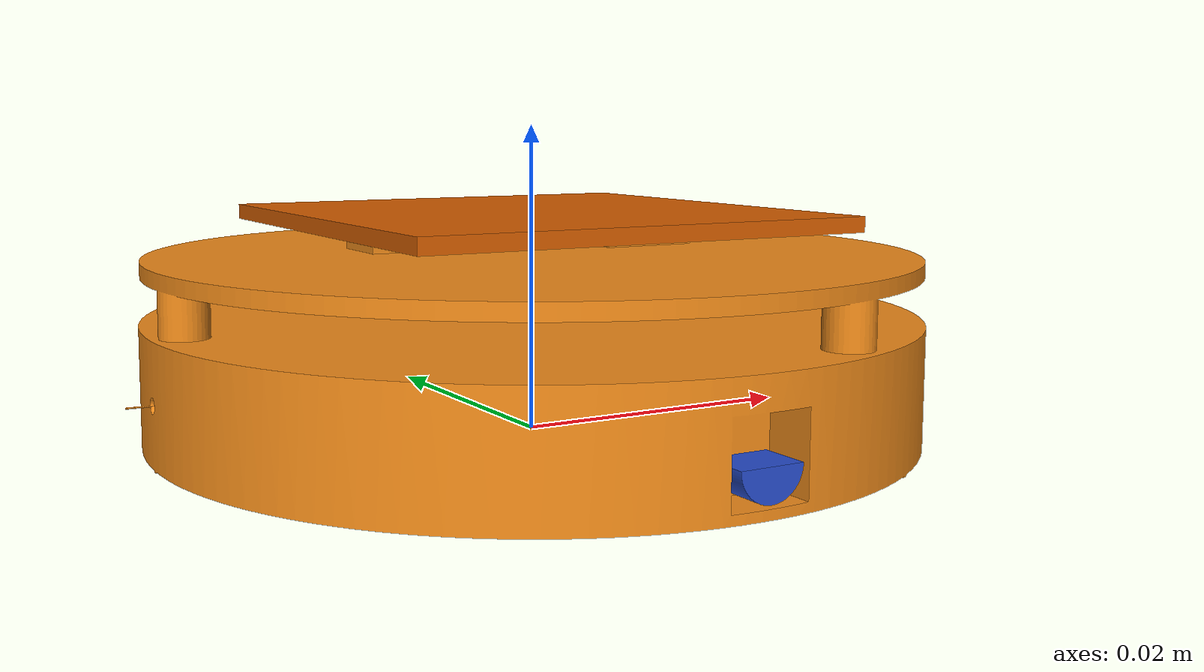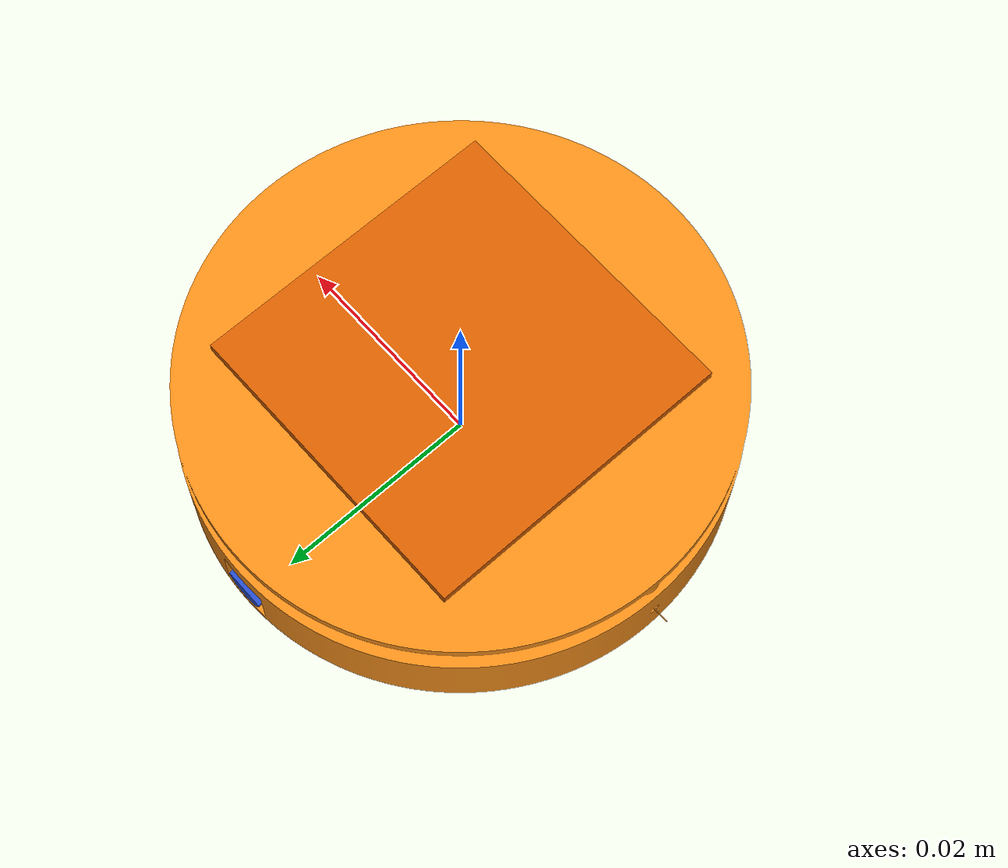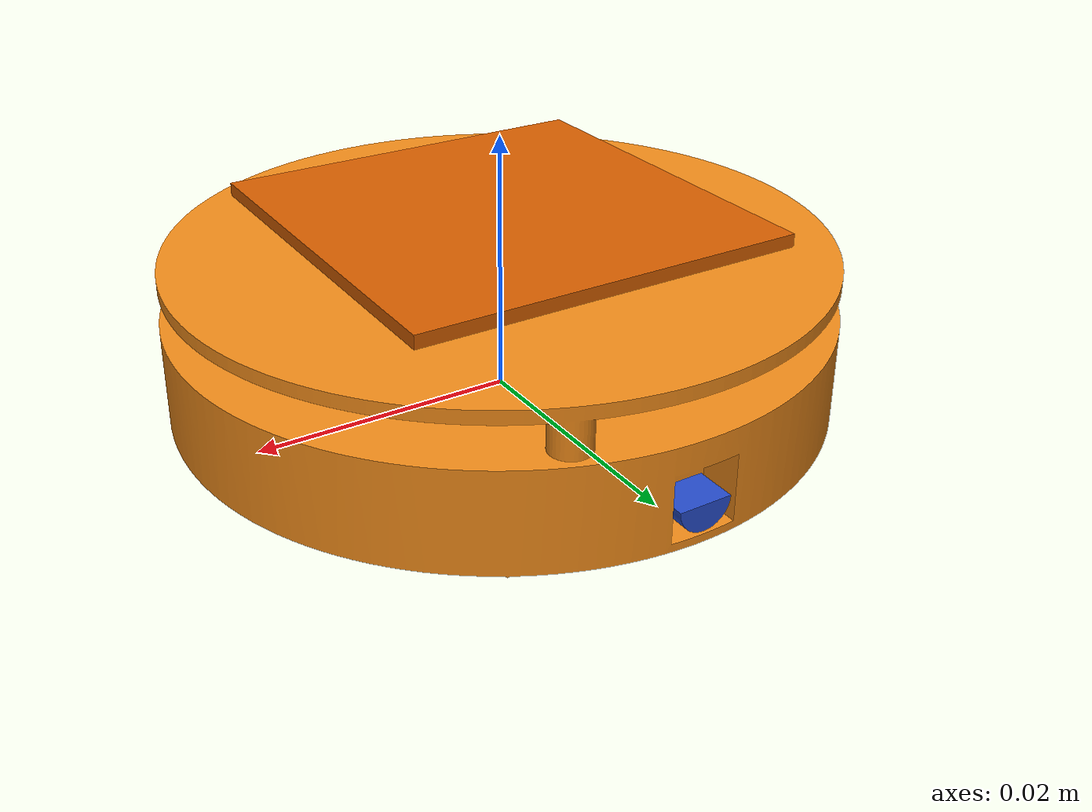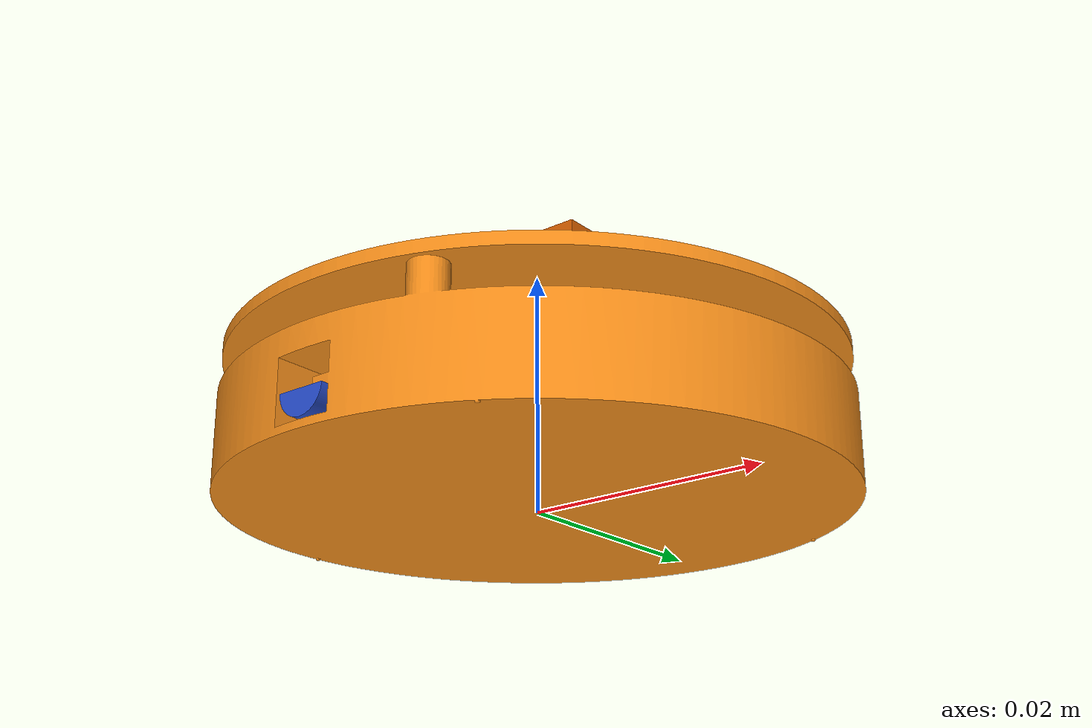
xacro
<?xml version="1.0"?>
<robot name="microbot" xmlns:xacro="http://www.ros.org/wiki/xacro" >

    <!-- Import all Gazebo-customization elements, including Gazebo colors -->
    <xacro:include filename="actual_microbot.gazebo" />

    <!-- Robot Constants -->
    <xacro:property name="motor_damping" value="0.00000001" />

    <xacro:property name="motor_friction" value="0.00001" />

    <xacro:property name="platform_height" value="0.0008" />

    <xacro:property name="left_eccenter_position">
        <origin xyz="0 0.022 0.003" rpy="0 0 0" />
    </xacro:property>

    <xacro:property name="right_eccenter_position">
        <origin xyz="0 -0.022 0.003" rpy="0 0 -3.14" />
    </xacro:property>

    <xacro:property name="mesh_mass_center_offset">
        <origin xyz="0 0.0015 -0.001" rpy="0 0 0" />
    </xacro:property>

    <!-- Inertial Macros -->
    <xacro:macro name="inertial_box" params="mass x y z *origin">
        <inertial>
            <xacro:insert_block name="origin"/>
            <mass value="${mass}" />
            <inertia ixx="${(1/12) * mass * (y*y+z*z)}" ixy="0.0" ixz="0.0"
                    iyy="${(1/12) * mass * (x*x+z*z)}" iyz="0.0"
                    izz="${(1/12) * mass * (x*x+y*y)}" />
        </inertial>
    </xacro:macro>

     <xacro:macro name="inertial_cylinder" params="mass length radius *origin">
        <inertial>
            <xacro:insert_block name="origin"/>
            <mass value="${mass}" />
            <inertia ixx="${(1/12) * mass * (3*radius*radius + length*length)}" ixy="0.0" ixz="0.0"
                    iyy="${(1/12) * mass * (3*radius*radius + length*length)}" iyz="0.0"
                    izz="${(1/2) * mass * (radius*radius)}" />
        </inertial>
    </xacro:macro>

    <!-- Base Link -->
    <link name="base_link">
    </link>

    <joint name="platform_joint" type="fixed">
        <parent link="base_link"></parent>
        <child link="platform_link"></child>
    </joint>

    <!-- Platform link -->
    <link name="platform_link">

        <inertial>
            <mass value="0.100003017"/>
            <inertia ixx="0.000019251"  ixy="0"  ixz="0" iyy="0.000011903"
                iyz="0" izz="0.000030834" />
        </inertial>

        <visual>
            <geometry>
                <mesh scale="0.001 0.001 0.001"
                    filename="package://microrobot/meshes/platform visual v2.stl"/>
            </geometry>
        </visual>

        <collision>
            <geometry>
                <mesh scale="0.001 0.001 0.001"
                    filename="package://microrobot/meshes/platform collision mesh v7.stl"/>
            </geometry>
        </collision>
    </link>

    <!-- Left eccenter link -->
    <link name="left_eccenter_link">

        <inertial>
            <xacro:insert_block name="mesh_mass_center_offset" />
            <mass value="0.000208337"/>
            <inertia ixx="2.145e-10"  ixy="0"  ixz="0" iyy="2.666e-10" iyz="0"
                izz="3.646e-10" />
        </inertial>

        <visual>
            <geometry>
                <mesh scale="0.001 0.001 0.001"
                    filename="package://microrobot/meshes/microbot_eccenter_5d.stl"/>
            </geometry>
        </visual>

        <collision>
            <geometry>
                <mesh scale="0.001 0.001 0.001"
                    filename="package://microrobot/meshes/microbot_eccenter_5d.stl"/>
            </geometry>
        </collision>

    </link>

    <joint name="platform_to_left_eccenter_joint" type="continuous">
        <xacro:insert_block name="left_eccenter_position" />
        <parent link="platform_link"/>
        <child link="left_eccenter_link"/>
        <axis xyz="0 1 0"/>
        <dynamics damping="${motor_damping}" friction="${motor_friction}"/>
    </joint>

    <!-- Right eccenter link -->
    <link name="right_eccenter_link">

        <inertial>
            <xacro:insert_block name="mesh_mass_center_offset" />
            <mass value="0.000208337"/>
            <inertia ixx="2.145e-10"  ixy="0"  ixz="0" iyy="2.666e-10" iyz="0"
                izz="3.646e-10" />
        </inertial>

        <visual>
            <geometry>
                <mesh scale="0.001 0.001 0.001"
                    filename="package://microrobot/meshes/microbot_eccenter_5d.stl"/>
            </geometry>
        </visual>

        <collision>
            <geometry>
                <mesh scale="0.001 0.001 0.001"
                    filename="package://microrobot/meshes/microbot_eccenter_5d.stl"/>
            </geometry>
        </collision>

    </link>

    <joint name="platform_to_right_eccenter_joint" type="continuous">
        <xacro:insert_block name="right_eccenter_position" />
        <parent link="platform_link"/>
        <child link="right_eccenter_link"/>
        <axis xyz="0 1 0"/>
        <dynamics damping="${motor_damping}" friction="${motor_friction}"/>
    </joint>

    <!-- IMU link -->
    <link name="imu_link">

        <xacro:inertial_box mass="0.00001" x="0.001" y="0.001" z="0.001">
            <origin xyz="0.0005 0 0.0005" rpy="0 0 0"/>
        </xacro:inertial_box>

        <visual>
            <origin rpy="0 0 0" xyz="0 0 0"/>
            <geometry>
                <box size="0.001 0.001 0.001"/>
            </geometry>
        </visual>

        <collision>
            <origin rpy="0 0 0" xyz="0 0 0"/>
            <geometry>
                <box size="0.001 0.001 0.001"/>
            </geometry>
        </collision>

    </link>

    <joint name="imu_joint" type="fixed">
        <axis xyz="1 0 0"/>
        <origin xyz="0 0 ${platform_height + 0.0005}"/>
        <parent link="platform_link"/>
        <child link="imu_link"/>
    </joint>

    <!-- AR tag -->
    <link name="ar_tag_link">

        <xacro:inertial_box mass="0.00001" x="0.03" y="0.03" z="0.001">
            <origin xyz="0.0005 0 0.0005" rpy="0 0 0"/>
        </xacro:inertial_box>

        <visual>
            <origin rpy="0 0 1.57079633" xyz="0 0 0"/>
            <geometry>
                <mesh filename="package://microrobot/ar_tags/ar_tag_0/ar_tag_0_3cm.dae"/>
            </geometry>
        </visual>

        <collision>
            <origin rpy="0 0 0" xyz="0 0 0"/>
            <geometry>
                <mesh filename="package://microrobot/ar_tags/ar_tag_0/ar_tag_0_3cm.dae"/>
            </geometry>
        </collision>

    </link>

    <joint name="ar_tag_joint" type="fixed">
        <axis xyz="1 0 0"/>
        <origin xyz="0 0 0.014" rpy="0 0 1.57"/>
        <parent link="platform_link"/>
        <child link="ar_tag_link"/>
    </joint>

    <!-- Transmitions -->
    <transmission name="left_motor_transmition">

        <type>transmission_interface/SimpleTransmission</type>

        <joint name="platform_to_left_eccenter_joint">
            <hardwareInterface>hardware_interface/VelocityJointInterface </hardwareInterface>
        </joint>

        <actuator name="l_motor">
            <hardwareInterface>hardware_interface/VelocityJointInterface </hardwareInterface>
            <mechanicalReduction>1</mechanicalReduction>
        </actuator>

    </transmission>

	<transmission name="right_motor_transmition">

        <type>transmission_interface/SimpleTransmission</type>

        <joint name="platform_to_right_eccenter_joint">
            <hardwareInterface>hardware_interface/VelocityJointInterface </hardwareInterface>
        </joint>

        <actuator name="r_motor">
            <hardwareInterface>hardware_interface/VelocityJointInterface </hardwareInterface>
            <mechanicalReduction>1</mechanicalReduction>
        </actuator>

    </transmission>

</robot>
